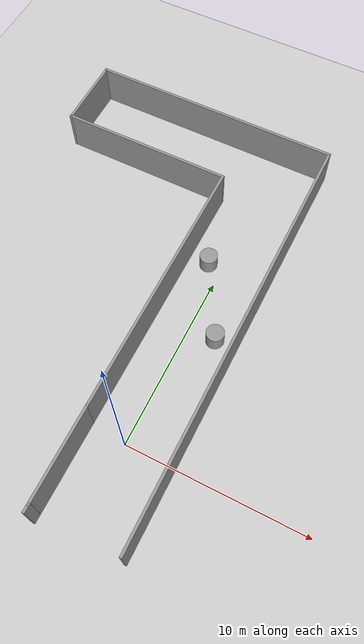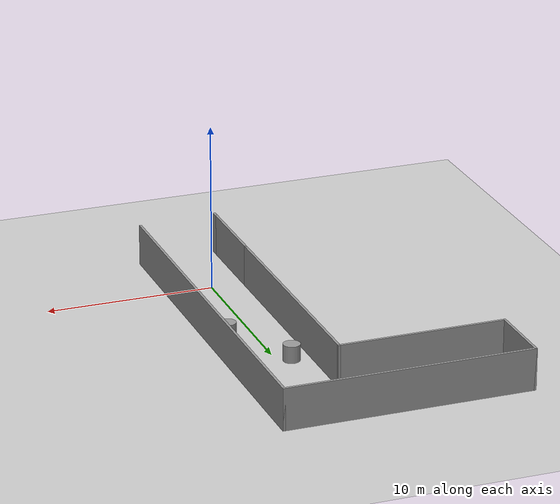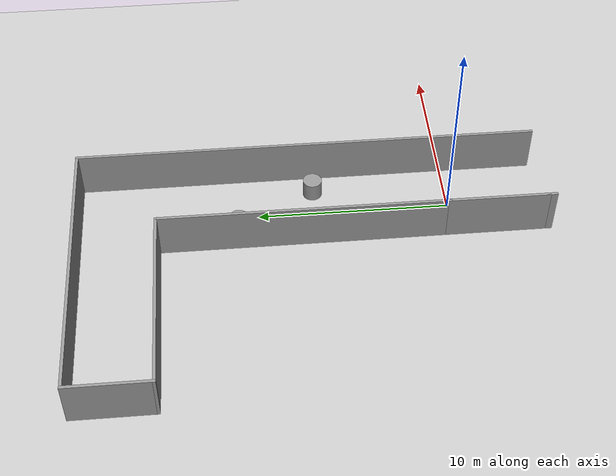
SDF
<sdf version="1.6">
 <world name="default">
  <model name="ground_plane">
   <static>1</static>
   <link name="link">
    <collision name="collision">
     <geometry><plane><normal>0 0 1</normal><size>100 100</size></plane></geometry>
     <surface><friction><ode><mu>100</mu><mu2>50</mu2></ode></friction></surface>
    </collision>
    <visual name="visual">
     <cast_shadows>0</cast_shadows>
     <geometry><plane><normal>0 0 1</normal><size>100 100</size></plane></geometry>
     <material>
      <script><uri>file://media/materials/scripts/gazebo.material</uri><name>Gazebo/Grey</name></script>
     </material>
    </visual>
   </link>
  </model>
  <light name="sun" type="directional">
   <pose>0 0 10 0 -0 0</pose>
   <diffuse>0.8 0.8 0.8 1</diffuse>
   <specular>0.1 0.1 0.1 1</specular>
   <attenuation>
    <range>1000</range>
    <constant>0.9</constant>
    <linear>0.01</linear>
    <quadratic>0.001</quadratic>
   </attenuation>
   <direction>-0.5 0.5 -1</direction>
  </light>
  <gravity>0 0 -9.8</gravity>
  <magnetic_field>6e-06 2.3e-05 -4.2e-05</magnetic_field>
  <atmosphere type="adiabatic"/>
  <physics name="default_physics" default="0" type="ode">
   <max_step_size>0.001</max_step_size>
   <real_time_factor>1</real_time_factor>
   <real_time_update_rate>1000</real_time_update_rate>
  </physics>
  <scene><ambient>0.4 0.4 0.4 1</ambient><background>0.7 0.7 0.7 1</background><shadows>1</shadows></scene>
  <spherical_coordinates>
   <surface_model>EARTH_WGS84</surface_model>
   <latitude_deg>0</latitude_deg>
   <longitude_deg>0</longitude_deg>
   <elevation>0</elevation>
   <heading_deg>0</heading_deg>
  </spherical_coordinates>
  <model name="Lworld">
   <pose>-4.54512 7.10239 0 0 -0 0</pose>
   <link name="Wall_0">
    <collision name="Wall_0_Collision">
     <geometry><box><size>15 0.15 2.5</size></box></geometry>
     <pose>0 0 1.25 0 -0 0</pose>
    </collision>
    <visual name="Wall_0_Visual">
     <pose>0 0 1.25 0 -0 0</pose>
     <geometry><box><size>15 0.15 2.5</size></box></geometry>
     <material>
      <script><uri>file://media/materials/scripts/gazebo.material</uri><name>Gazebo/Grey</name></script>
      <ambient>1 1 1 1</ambient>
     </material>
    </visual>
    <pose>2.55 0.674999 0 0 -0 1.5708</pose>
   </link>
   <link name="Wall_1">
    <collision name="Wall_1_Collision">
     <geometry><box><size>10 0.15 2.5</size></box></geometry>
     <pose>0 0 1.25 0 -0 0</pose>
    </collision>
    <visual name="Wall_1_Visual">
     <pose>0 0 1.25 0 -0 0</pose>
     <geometry><box><size>10 0.15 2.5</size></box></geometry>
     <material>
      <script><uri>file://media/materials/scripts/gazebo.material</uri><name>Gazebo/Grey</name></script>
      <ambient>1 1 1 1</ambient>
     </material>
    </visual>
    <pose>-2.375 8.1 0 0 -0 3.14159</pose>
   </link>
   <link name="Wall_2">
    <collision name="Wall_2_Collision">
     <geometry><box><size>4.25 0.15 2.5</size></box></geometry>
     <pose>0 0 1.25 0 -0 0</pose>
    </collision>
    <visual name="Wall_2_Visual">
     <pose>0 0 1.25 0 -0 0</pose>
     <geometry><box><size>4.25 0.15 2.5</size></box></geometry>
     <material>
      <script><uri>file://media/materials/scripts/gazebo.material</uri><name>Gazebo/Grey</name></script>
      <ambient>1 1 1 1</ambient>
     </material>
    </visual>
    <pose>-7.3 10.15 0 0 -0 1.5708</pose>
   </link>
   <link name="Wall_3">
    <collision name="Wall_3_Collision">
     <geometry><box><size>14.75 0.15 2.5</size></box></geometry>
     <pose>0 0 1.25 0 -0 0</pose>
    </collision>
    <visual name="Wall_3_Visual">
     <pose>0 0 1.25 0 -0 0</pose>
     <geometry><box><size>14.75 0.15 2.5</size></box></geometry>
     <material>
      <script><uri>file://media/materials/scripts/gazebo.material</uri><name>Gazebo/Grey</name></script>
      <ambient>1 1 1 1</ambient>
     </material>
    </visual>
    <pose>-1e-06 12.2 0 0 -0 0</pose>
   </link>
   <link name="Wall_4">
    <collision name="Wall_4_Collision">
     <geometry><box><size>24.25 0.15 2.5</size></box></geometry>
     <pose>0 0 1.25 0 -0 0</pose>
    </collision>
    <visual name="Wall_4_Visual">
     <pose>0 0 1.25 0 -0 0</pose>
     <geometry><box><size>24.25 0.15 2.5</size></box></geometry>
     <material>
      <script><uri>file://media/materials/scripts/gazebo.material</uri><name>Gazebo/Grey</name></script>
      <ambient>1 1 1 1</ambient>
     </material>
    </visual>
    <pose>7.3 0.149999 0 0 0 -1.5708</pose>
   </link>
   <link name="Wall_6">
    <collision name="Wall_6_Collision">
     <geometry><box><size>5.25 0.15 2.5</size></box></geometry>
     <pose>0 0 1.25 0 -0 0</pose>
    </collision>
    <visual name="Wall_6_Visual">
     <pose>0 0 1.25 0 -0 0</pose>
     <geometry><box><size>5.25 0.15 2.5</size></box></geometry>
     <material>
      <script><uri>file://media/materials/scripts/gazebo.material</uri><name>Gazebo/Grey</name></script>
      <ambient>1 1 1 1</ambient>
     </material>
    </visual>
    <pose>2.55 -9.3 0 0 0 -1.5708</pose>
   </link>
   <link name="Wall_7">
    <collision name="Wall_7_Collision">
     <geometry><box><size>0.5 0.15 2.5</size></box></geometry>
     <pose>0 0 1.25 0 -0 0</pose>
    </collision>
    <visual name="Wall_7_Visual">
     <pose>0 0 1.25 0 -0 0</pose>
     <geometry><box><size>0.5 0.15 2.5</size></box></geometry>
     <material>
      <script><uri>file://media/materials/scripts/gazebo.material</uri><name>Gazebo/Grey</name></script>
      <ambient>1 1 1 1</ambient>
     </material>
    </visual>
    <pose>2.55 -12.025 0 0 0 -1.5708</pose>
   </link>
   <static>1</static>
  </model>
  <model name="unit_cylinder_0">
   <pose>1.52637 7.04754 0.499992 -3e-06 3e-06 0</pose>
   <link name="link">
    <inertial>
     <mass>1</mass>
     <inertia><ixx>0.145833</ixx><ixy>0</ixy><ixz>0</ixz><iyy>0.145833</iyy><iyz>0</iyz><izz>0.125</izz></inertia>
    </inertial>
    <collision name="collision">
     <geometry><cylinder><radius>0.5</radius><length>1</length></cylinder></geometry>
    </collision>
    <visual name="visual">
     <geometry><cylinder><radius>0.5</radius><length>1</length></cylinder></geometry>
     <material>
      <script><name>Gazebo/Grey</name><uri>file://media/materials/scripts/gazebo.material</uri></script>
     </material>
    </visual>
   </link>
  </model>
  <model name="unit_cylinder_1">
   <pose>-0.812689 11.0593 0.499998 3e-06 -4e-06 0</pose>
   <link name="link">
    <inertial>
     <mass>1</mass>
     <inertia><ixx>0.145833</ixx><ixy>0</ixy><ixz>0</ixz><iyy>0.145833</iyy><iyz>0</iyz><izz>0.125</izz></inertia>
    </inertial>
    <collision name="collision">
     <geometry><cylinder><radius>0.5</radius><length>1</length></cylinder></geometry>
    </collision>
    <visual name="visual">
     <geometry><cylinder><radius>0.5</radius><length>1</length></cylinder></geometry>
     <material>
      <script><name>Gazebo/Grey</name><uri>file://media/materials/scripts/gazebo.material</uri></script>
     </material>
    </visual>
   </link>
  </model>
 </world>
</sdf>
